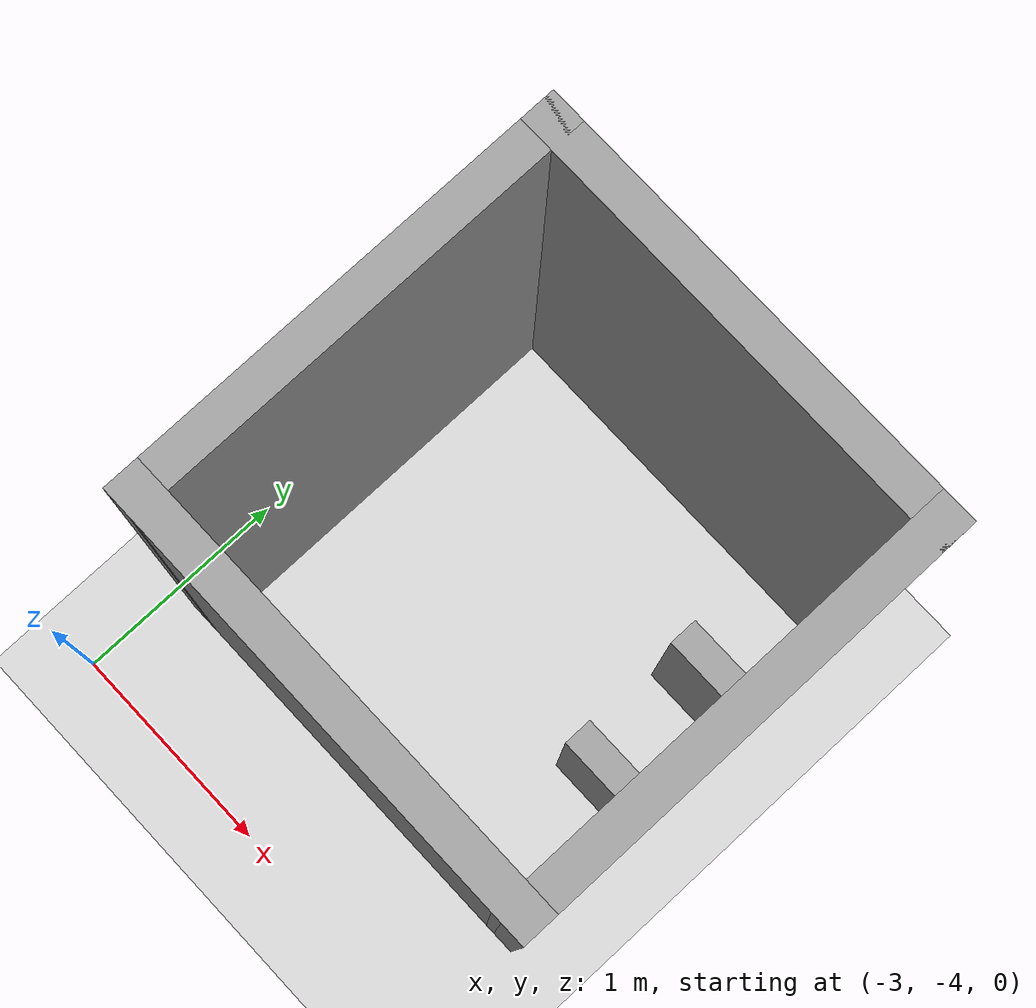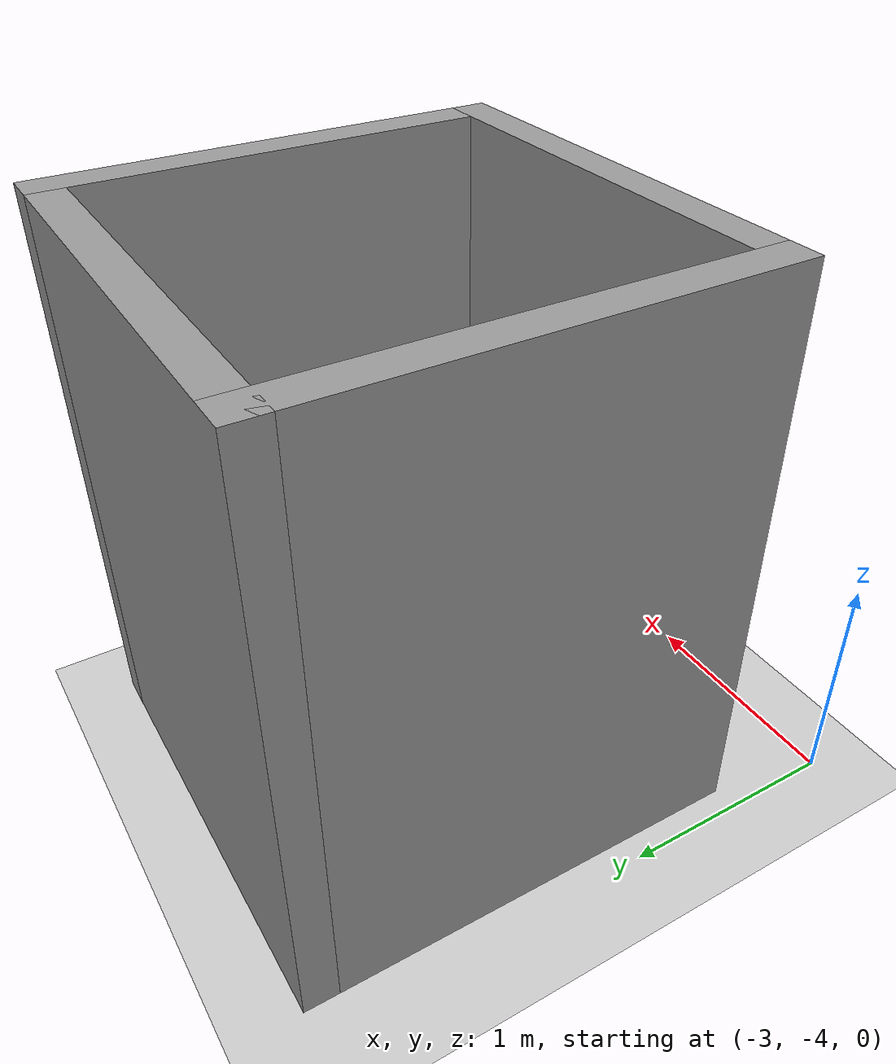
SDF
<sdf version="1.7">
 <world name="default">
  <light name="sun" type="directional">
   <pose>0 0 10 0 -0 0</pose>
   <diffuse>0.8 0.8 0.8 1</diffuse>
   <specular>0.2 0.2 0.2 1</specular>
   <attenuation>
    <range>1000</range>
    <constant>0.9</constant>
    <linear>0.01</linear>
    <quadratic>0.001</quadratic>
   </attenuation>
   <direction>-0.5 0.1 -0.9</direction>
   <spot><inner_angle>0</inner_angle><outer_angle>0</outer_angle><falloff>0</falloff></spot>
  </light>
  <model name="ground_plane">
   <static>1</static>
   <link name="link">
    <collision name="collision">
     <geometry><plane><normal>0 0 1</normal><size>100 100</size></plane></geometry>
     <surface>
      <contact><collide_bitmask>65535</collide_bitmask></contact>
      <friction><ode><mu>100</mu><mu2>50</mu2></ode></friction>
     </surface>
    </collision>
    <visual name="visual">
     <cast_shadows>0</cast_shadows>
     <geometry><plane><normal>0 0 1</normal><size>100 100</size></plane></geometry>
     <material>
      <script><uri>file://media/materials/scripts/gazebo.material</uri><name>Gazebo/Grey</name></script>
     </material>
    </visual>
   </link>
  </model>
  <gravity>0 0 -9.8</gravity>
  <magnetic_field>6e-06 2.3e-05 -4.2e-05</magnetic_field>
  <atmosphere type="adiabatic"/>
  <physics type="ode">
   <max_step_size>0.001</max_step_size>
   <real_time_factor>1</real_time_factor>
   <real_time_update_rate>1000</real_time_update_rate>
  </physics>
  <scene><ambient>0.4 0.4 0.4 1</ambient><background>0.7 0.7 0.7 1</background><shadows>1</shadows></scene>
  <spherical_coordinates>
   <surface_model>EARTH_WGS84</surface_model>
   <latitude_deg>0</latitude_deg>
   <longitude_deg>0</longitude_deg>
   <elevation>0</elevation>
   <heading_deg>0</heading_deg>
  </spherical_coordinates>
  <model name="small_world">
   <pose>-1.4475 -1.7575 0 0 -0 0</pose>
   <link name="Wall_24">
    <collision name="Wall_24_Collision">
     <geometry><box><size>2 0.15 2.5</size></box></geometry>
     <pose>0 0 1.25 0 -0 0</pose>
    </collision>
    <visual name="Wall_24_Visual">
     <pose>0 0 1.25 0 -0 0</pose>
     <geometry><box><size>2 0.15 2.5</size></box></geometry>
     <material>
      <script><uri>file://media/materials/scripts/gazebo.material</uri><name>Gazebo/Grey</name></script>
      <ambient>1 1 1 1</ambient>
     </material>
     <meta><layer>0</layer></meta>
    </visual>
    <pose>-1.3725 -0.7575 0 0 -0 -1.5708</pose>
   </link>
   <link name="Wall_25">
    <collision name="Wall_25_Collision">
     <geometry><box><size>2 0.15 2.5</size></box></geometry>
     <pose>0 0 1.25 0 -0 0</pose>
    </collision>
    <visual name="Wall_25_Visual">
     <pose>0 0 1.25 0 -0 0</pose>
     <geometry><box><size>2 0.15 2.5</size></box></geometry>
     <material>
      <script><uri>file://media/materials/scripts/gazebo.material</uri><name>Gazebo/Grey</name></script>
      <ambient>1 1 1 1</ambient>
     </material>
     <meta><layer>0</layer></meta>
    </visual>
    <pose>-0.4475 -1.6825 0 0 -0 0</pose>
   </link>
   <link name="Wall_26">
    <collision name="Wall_26_Collision">
     <geometry><box><size>2 0.15 2.5</size></box></geometry>
     <pose>0 0 1.25 0 -0 0</pose>
    </collision>
    <visual name="Wall_26_Visual">
     <pose>0 0 1.25 0 -0 0</pose>
     <geometry><box><size>2 0.15 2.5</size></box></geometry>
     <material>
      <script><uri>file://media/materials/scripts/gazebo.material</uri><name>Gazebo/Grey</name></script>
      <ambient>1 1 1 1</ambient>
     </material>
     <meta><layer>0</layer></meta>
    </visual>
    <pose>0.4775 -0.7575 0 0 -0 1.5708</pose>
   </link>
   <link name="Wall_27">
    <collision name="Wall_27_Collision">
     <geometry><box><size>2 0.15 2.5</size></box></geometry>
     <pose>0 0 1.25 0 -0 0</pose>
    </collision>
    <visual name="Wall_27_Visual">
     <pose>0 0 1.25 0 -0 0</pose>
     <geometry><box><size>2 0.15 2.5</size></box></geometry>
     <material>
      <script><uri>file://media/materials/scripts/gazebo.material</uri><name>Gazebo/Grey</name></script>
      <ambient>1 1 1 1</ambient>
     </material>
     <meta><layer>0</layer></meta>
    </visual>
    <pose>-0.4475 0.1675 0 0 -0 3.14159</pose>
   </link>
   <static>1</static>
  </model>
  <model name="unit_box">
   <pose>-1.19876 -2.21073 0.5 0 0 -0.000207</pose>
   <link name="link">
    <inertial>
     <mass>1</mass>
     <inertia>
      <ixx>0.166667</ixx>
      <ixy>0</ixy>
      <ixz>0</ixz>
      <iyy>0.166667</iyy>
      <iyz>0</iyz>
      <izz>0.166667</izz>
     </inertia>
    </inertial>
    <collision name="collision"><geometry><box><size>0.290663 0.129932 1</size></box></geometry></collision>
    <visual name="visual">
     <geometry><box><size>0.290663 0.129932 1</size></box></geometry>
     <material>
      <script><name>Gazebo/Grey</name><uri>file://media/materials/scripts/gazebo.material</uri></script>
     </material>
    </visual>
   </link>
  </model>
  <model name="unit_box_clone">
   <pose>-1.19283 -2.77486 0.5 0 -0 0.000242</pose>
   <link name="link">
    <inertial>
     <mass>1</mass>
     <inertia>
      <ixx>0.166667</ixx>
      <ixy>0</ixy>
      <ixz>0</ixz>
      <iyy>0.166667</iyy>
      <iyz>0</iyz>
      <izz>0.166667</izz>
     </inertia>
    </inertial>
    <collision name="collision"><geometry><box><size>0.290663 0.129932 1</size></box></geometry></collision>
    <visual name="visual">
     <geometry><box><size>0.290663 0.129932 1</size></box></geometry>
     <material>
      <script><name>Gazebo/Grey</name><uri>file://media/materials/scripts/gazebo.material</uri></script>
     </material>
    </visual>
   </link>
  </model>
 </world>
</sdf>
